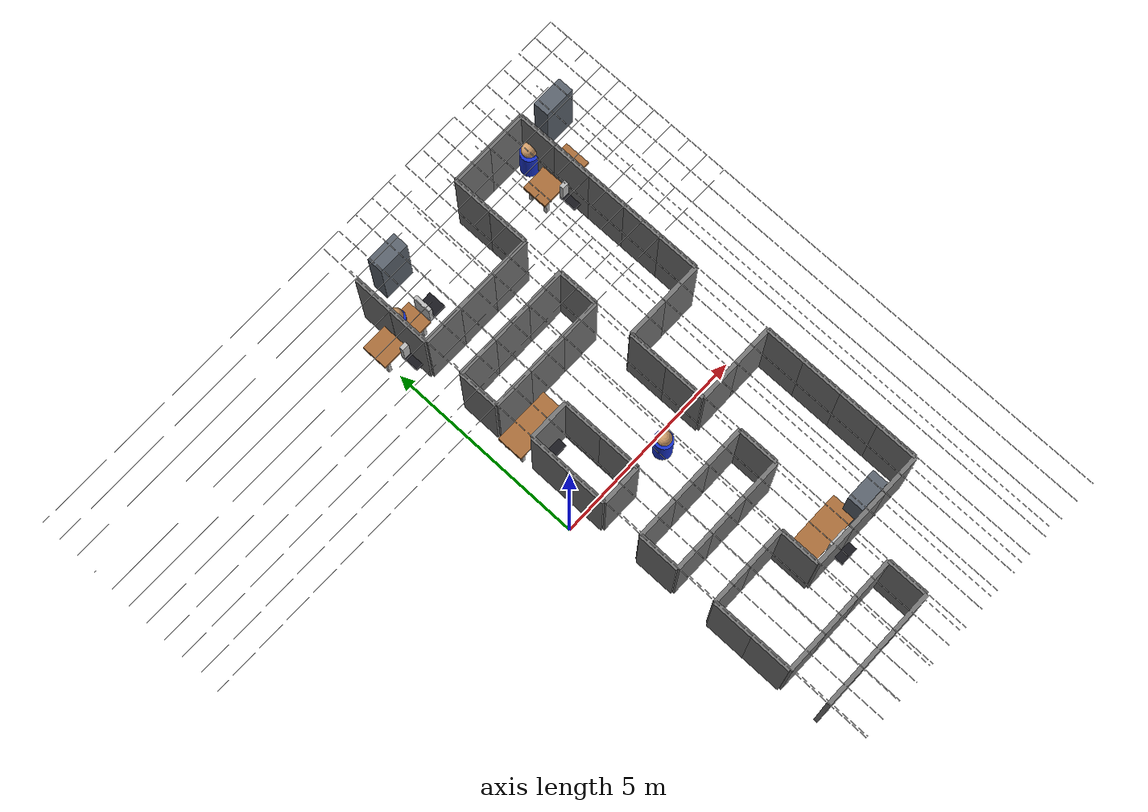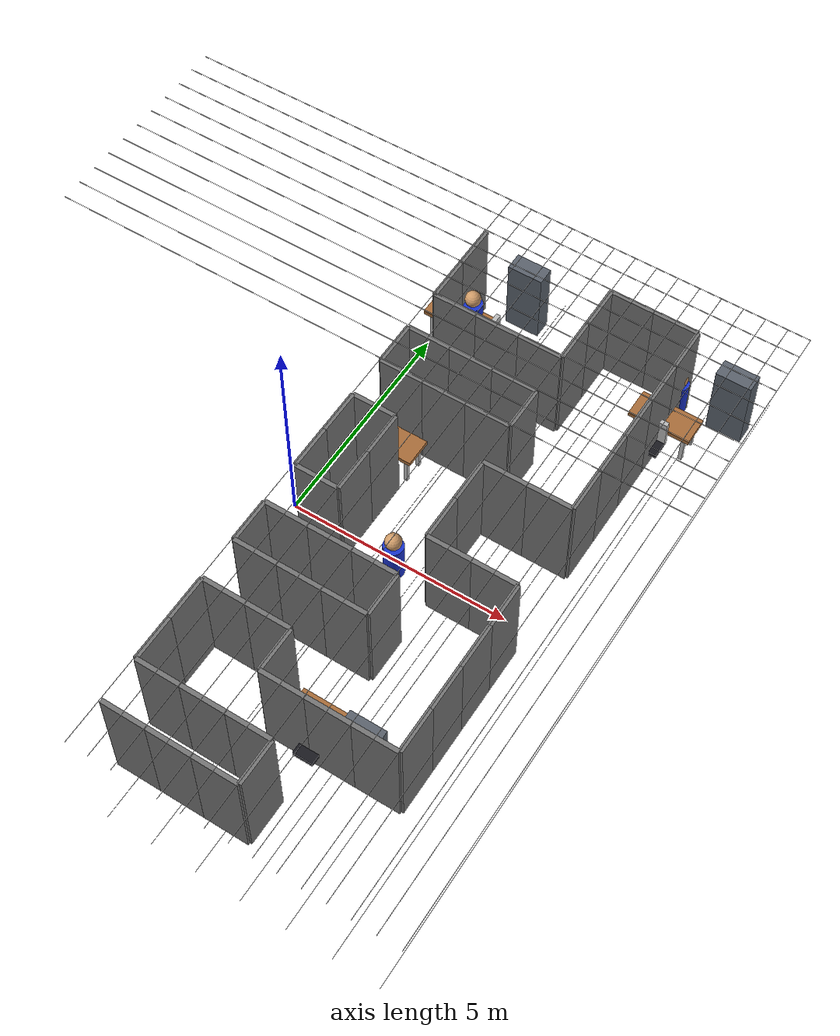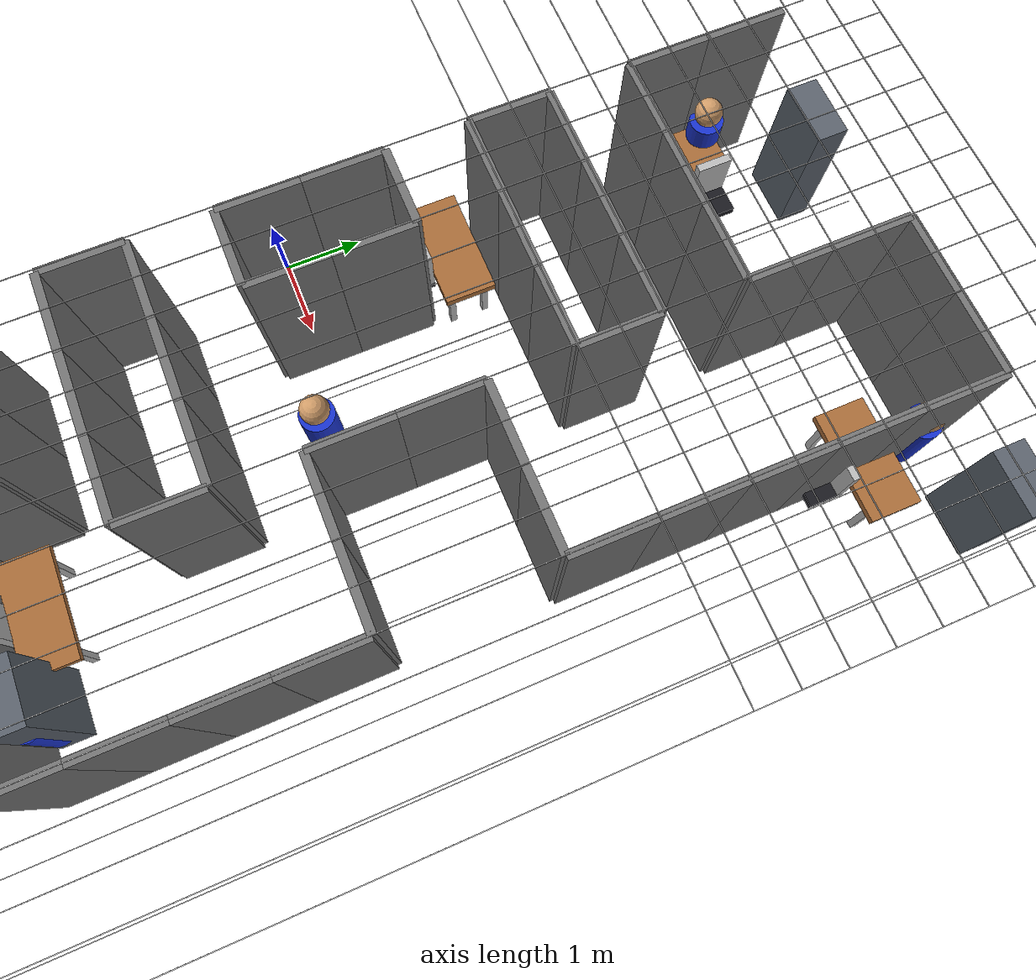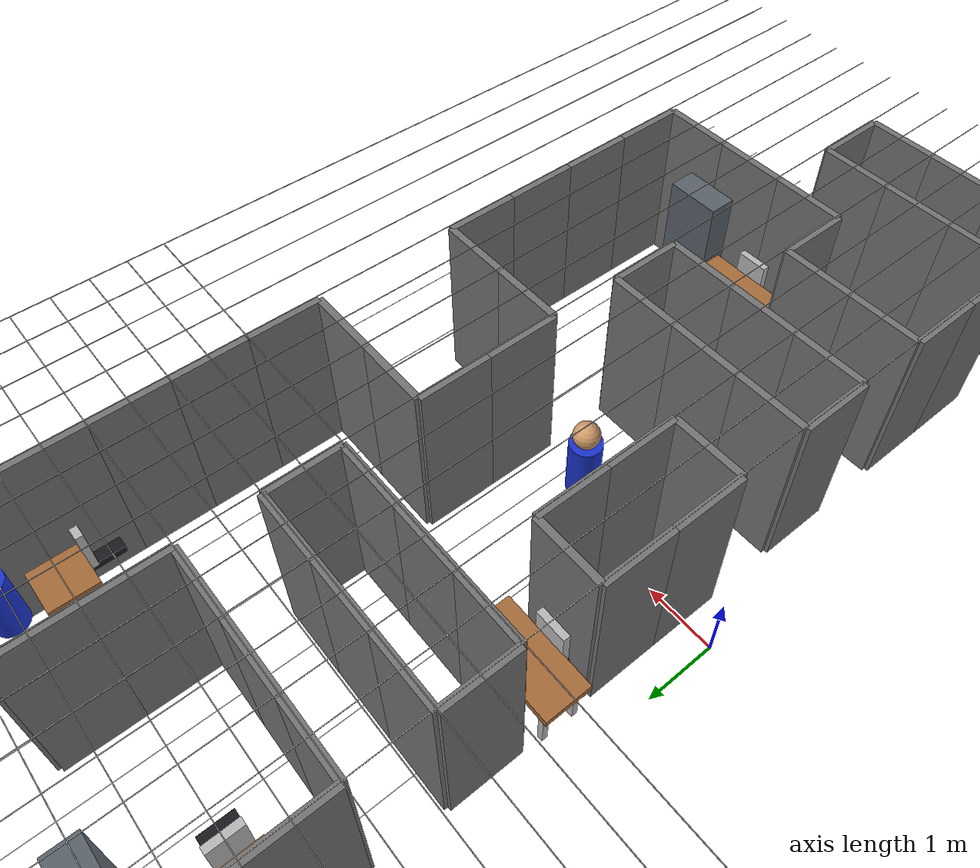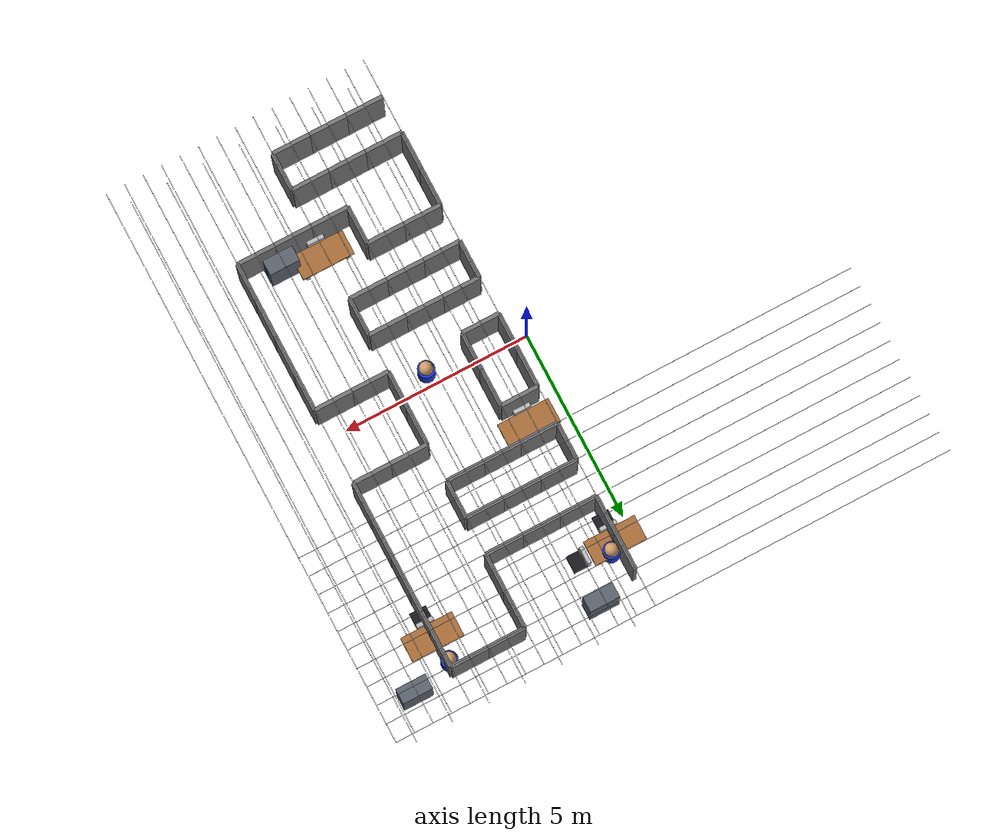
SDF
<sdf version="1.9">
 <world name="nidar_airmouse_building">
  <model name="grid_x_8">
   <static>true</static>
   <pose>1 0 0.006 0 0 0</pose>
   <link name="link">
    <visual name="visual">
     <geometry><box><size>0.008 15 0.002</size></box></geometry>
     <material><ambient>0.25 0.25 0.25 0.35</ambient></material>
    </visual>
   </link>
  </model>
  <model name="grid_x_9">
   <static>true</static>
   <pose>2 0 0.006 0 0 0</pose>
   <link name="link">
    <visual name="visual">
     <geometry><box><size>0.008 15 0.002</size></box></geometry>
     <material><ambient>0.25 0.25 0.25 0.35</ambient></material>
    </visual>
   </link>
  </model>
  <model name="grid_x_10">
   <static>true</static>
   <pose>3 0 0.006 0 0 0</pose>
   <link name="link">
    <visual name="visual">
     <geometry><box><size>0.008 15 0.002</size></box></geometry>
     <material><ambient>0.25 0.25 0.25 0.35</ambient></material>
    </visual>
   </link>
  </model>
  <model name="grid_x_11">
   <static>true</static>
   <pose>4 0 0.006 0 0 0</pose>
   <link name="link">
    <visual name="visual">
     <geometry><box><size>0.008 15 0.002</size></box></geometry>
     <material><ambient>0.25 0.25 0.25 0.35</ambient></material>
    </visual>
   </link>
  </model>
  <model name="grid_x_12">
   <static>true</static>
   <pose>5 0 0.006 0 0 0</pose>
   <link name="link">
    <visual name="visual">
     <geometry><box><size>0.008 15 0.002</size></box></geometry>
     <material><ambient>0.25 0.25 0.25 0.35</ambient></material>
    </visual>
   </link>
  </model>
  <model name="grid_x_13">
   <static>true</static>
   <pose>6 0 0.006 0 0 0</pose>
   <link name="link">
    <visual name="visual">
     <geometry><box><size>0.008 15 0.002</size></box></geometry>
     <material><ambient>0.25 0.25 0.25 0.35</ambient></material>
    </visual>
   </link>
  </model>
  <model name="grid_x_14">
   <static>true</static>
   <pose>7 0 0.006 0 0 0</pose>
   <link name="link">
    <visual name="visual">
     <geometry><box><size>0.008 15 0.002</size></box></geometry>
     <material><ambient>0.25 0.25 0.25 0.35</ambient></material>
    </visual>
   </link>
  </model>
  <model name="wall_7">
   <static>true</static>
   <pose>0.5 6.0 1.25
            0 0 0</pose>
   <link name="link">
    <collision name="collision"><geometry><box><size>0.1 1.0 2.5</size></box></geometry></collision>
    <visual name="visual">
     <geometry><box><size>0.1 1.0 2.5</size></box></geometry>
     <material><ambient>0.35 0.35 0.35 1</ambient><diffuse>0.45 0.45 0.45 1</diffuse></material>
    </visual>
   </link>
  </model>
  <model name="wall_8">
   <static>true</static>
   <pose>4.0 6.5 1.25
            0 0 0</pose>
   <link name="link">
    <collision name="collision"><geometry><box><size>1.0 0.1 2.5</size></box></geometry></collision>
    <visual name="visual">
     <geometry><box><size>1.0 0.1 2.5</size></box></geometry>
     <material><ambient>0.35 0.35 0.35 1</ambient><diffuse>0.45 0.45 0.45 1</diffuse></material>
    </visual>
   </link>
  </model>
  <model name="wall_9">
   <static>true</static>
   <pose>3.5 6.0 1.25
            0 0 0</pose>
   <link name="link">
    <collision name="collision"><geometry><box><size>0.1 1.0 2.5</size></box></geometry></collision>
    <visual name="visual">
     <geometry><box><size>0.1 1.0 2.5</size></box></geometry>
     <material><ambient>0.35 0.35 0.35 1</ambient><diffuse>0.45 0.45 0.45 1</diffuse></material>
    </visual>
   </link>
  </model>
  <model name="wall_10">
   <static>true</static>
   <pose>5.0 6.5 1.25
            0 0 0</pose>
   <link name="link">
    <collision name="collision"><geometry><box><size>1.0 0.1 2.5</size></box></geometry></collision>
    <visual name="visual">
     <geometry><box><size>1.0 0.1 2.5</size></box></geometry>
     <material><ambient>0.35 0.35 0.35 1</ambient><diffuse>0.45 0.45 0.45 1</diffuse></material>
    </visual>
   </link>
  </model>
  <model name="wall_11">
   <static>true</static>
   <pose>5.5 6.0 1.25
            0 0 0</pose>
   <link name="link">
    <collision name="collision"><geometry><box><size>0.1 1.0 2.5</size></box></geometry></collision>
    <visual name="visual">
     <geometry><box><size>0.1 1.0 2.5</size></box></geometry>
     <material><ambient>0.35 0.35 0.35 1</ambient><diffuse>0.45 0.45 0.45 1</diffuse></material>
    </visual>
   </link>
  </model>
  <model name="wall_16">
   <static>true</static>
   <pose>0.5 5.0 1.25
            0 0 0</pose>
   <link name="link">
    <collision name="collision"><geometry><box><size>0.1 1.0 2.5</size></box></geometry></collision>
    <visual name="visual">
     <geometry><box><size>0.1 1.0 2.5</size></box></geometry>
     <material><ambient>0.35 0.35 0.35 1</ambient><diffuse>0.45 0.45 0.45 1</diffuse></material>
    </visual>
   </link>
  </model>
  <model name="wall_17">
   <static>true</static>
   <pose>3.5 5.0 1.25
            0 0 0</pose>
   <link name="link">
    <collision name="collision"><geometry><box><size>0.1 1.0 2.5</size></box></geometry></collision>
    <visual name="visual">
     <geometry><box><size>0.1 1.0 2.5</size></box></geometry>
     <material><ambient>0.35 0.35 0.35 1</ambient><diffuse>0.45 0.45 0.45 1</diffuse></material>
    </visual>
   </link>
  </model>
  <model name="wall_18">
   <static>true</static>
   <pose>5.5 5.0 1.25
            0 0 0</pose>
   <link name="link">
    <collision name="collision"><geometry><box><size>0.1 1.0 2.5</size></box></geometry></collision>
    <visual name="visual">
     <geometry><box><size>0.1 1.0 2.5</size></box></geometry>
     <material><ambient>0.35 0.35 0.35 1</ambient><diffuse>0.45 0.45 0.45 1</diffuse></material>
    </visual>
   </link>
  </model>
  <model name="wall_26">
   <static>true</static>
   <pose>1.0 4.5 1.25
            0 0 0</pose>
   <link name="link">
    <collision name="collision"><geometry><box><size>1.0 0.1 2.5</size></box></geometry></collision>
    <visual name="visual">
     <geometry><box><size>1.0 0.1 2.5</size></box></geometry>
     <material><ambient>0.35 0.35 0.35 1</ambient><diffuse>0.45 0.45 0.45 1</diffuse></material>
    </visual>
   </link>
  </model>
  <model name="wall_27">
   <static>true</static>
   <pose>1.0 3.5 1.25
            0 0 0</pose>
   <link name="link">
    <collision name="collision"><geometry><box><size>1.0 0.1 2.5</size></box></geometry></collision>
    <visual name="visual">
     <geometry><box><size>1.0 0.1 2.5</size></box></geometry>
     <material><ambient>0.35 0.35 0.35 1</ambient><diffuse>0.45 0.45 0.45 1</diffuse></material>
    </visual>
   </link>
  </model>
  <model name="wall_28">
   <static>true</static>
   <pose>2.0 4.5 1.25
            0 0 0</pose>
   <link name="link">
    <collision name="collision"><geometry><box><size>1.0 0.1 2.5</size></box></geometry></collision>
    <visual name="visual">
     <geometry><box><size>1.0 0.1 2.5</size></box></geometry>
     <material><ambient>0.35 0.35 0.35 1</ambient><diffuse>0.45 0.45 0.45 1</diffuse></material>
    </visual>
   </link>
  </model>
  <model name="wall_29">
   <static>true</static>
   <pose>2.0 3.5 1.25
            0 0 0</pose>
   <link name="link">
    <collision name="collision"><geometry><box><size>1.0 0.1 2.5</size></box></geometry></collision>
    <visual name="visual">
     <geometry><box><size>1.0 0.1 2.5</size></box></geometry>
     <material><ambient>0.35 0.35 0.35 1</ambient><diffuse>0.45 0.45 0.45 1</diffuse></material>
    </visual>
   </link>
  </model>
  <model name="wall_30">
   <static>true</static>
   <pose>3.0 4.5 1.25
            0 0 0</pose>
   <link name="link">
    <collision name="collision"><geometry><box><size>1.0 0.1 2.5</size></box></geometry></collision>
    <visual name="visual">
     <geometry><box><size>1.0 0.1 2.5</size></box></geometry>
     <material><ambient>0.35 0.35 0.35 1</ambient><diffuse>0.45 0.45 0.45 1</diffuse></material>
    </visual>
   </link>
  </model>
  <model name="wall_31">
   <static>true</static>
   <pose>3.0 3.5 1.25
            0 0 0</pose>
   <link name="link">
    <collision name="collision"><geometry><box><size>1.0 0.1 2.5</size></box></geometry></collision>
    <visual name="visual">
     <geometry><box><size>1.0 0.1 2.5</size></box></geometry>
     <material><ambient>0.35 0.35 0.35 1</ambient><diffuse>0.45 0.45 0.45 1</diffuse></material>
    </visual>
   </link>
  </model>
  <model name="wall_32">
   <static>true</static>
   <pose>5.5 4.0 1.25
            0 0 0</pose>
   <link name="link">
    <collision name="collision"><geometry><box><size>0.1 1.0 2.5</size></box></geometry></collision>
    <visual name="visual">
     <geometry><box><size>0.1 1.0 2.5</size></box></geometry>
     <material><ambient>0.35 0.35 0.35 1</ambient><diffuse>0.45 0.45 0.45 1</diffuse></material>
    </visual>
   </link>
  </model>
  <model name="wall_36">
   <static>true</static>
   <pose>0.5 3.0 1.25
            0 0 0</pose>
   <link name="link">
    <collision name="collision"><geometry><box><size>0.1 1.0 2.5</size></box></geometry></collision>
    <visual name="visual">
     <geometry><box><size>0.1 1.0 2.5</size></box></geometry>
     <material><ambient>0.35 0.35 0.35 1</ambient><diffuse>0.45 0.45 0.45 1</diffuse></material>
    </visual>
   </link>
  </model>
  <model name="wall_37">
   <static>true</static>
   <pose>3.5 3.0 1.25
            0 0 0</pose>
   <link name="link">
    <collision name="collision"><geometry><box><size>0.1 1.0 2.5</size></box></geometry></collision>
    <visual name="visual">
     <geometry><box><size>0.1 1.0 2.5</size></box></geometry>
     <material><ambient>0.35 0.35 0.35 1</ambient><diffuse>0.45 0.45 0.45 1</diffuse></material>
    </visual>
   </link>
  </model>
  <model name="wall_38">
   <static>true</static>
   <pose>5.5 3.0 1.25
            0 0 0</pose>
   <link name="link">
    <collision name="collision"><geometry><box><size>0.1 1.0 2.5</size></box></geometry></collision>
    <visual name="visual">
     <geometry><box><size>0.1 1.0 2.5</size></box></geometry>
     <material><ambient>0.35 0.35 0.35 1</ambient><diffuse>0.45 0.45 0.45 1</diffuse></material>
    </visual>
   </link>
  </model>
  <model name="wall_48">
   <static>true</static>
   <pose>1.0 2.5 1.25
            0 0 0</pose>
   <link name="link">
    <collision name="collision"><geometry><box><size>1.0 0.1 2.5</size></box></geometry></collision>
    <visual name="visual">
     <geometry><box><size>1.0 0.1 2.5</size></box></geometry>
     <material><ambient>0.35 0.35 0.35 1</ambient><diffuse>0.45 0.45 0.45 1</diffuse></material>
    </visual>
   </link>
  </model>
  <model name="wall_49">
   <static>true</static>
   <pose>1.0 1.5 1.25
            0 0 0</pose>
   <link name="link">
    <collision name="collision"><geometry><box><size>1.0 0.1 2.5</size></box></geometry></collision>
    <visual name="visual">
     <geometry><box><size>1.0 0.1 2.5</size></box></geometry>
     <material><ambient>0.35 0.35 0.35 1</ambient><diffuse>0.45 0.45 0.45 1</diffuse></material>
    </visual>
   </link>
  </model>
  <model name="wall_50">
   <static>true</static>
   <pose>2.0 2.5 1.25
            0 0 0</pose>
   <link name="link">
    <collision name="collision"><geometry><box><size>1.0 0.1 2.5</size></box></geometry></collision>
    <visual name="visual">
     <geometry><box><size>1.0 0.1 2.5</size></box></geometry>
     <material><ambient>0.35 0.35 0.35 1</ambient><diffuse>0.45 0.45 0.45 1</diffuse></material>
    </visual>
   </link>
  </model>
  <model name="wall_51">
   <static>true</static>
   <pose>3.0 2.5 1.25
            0 0 0</pose>
   <link name="link">
    <collision name="collision"><geometry><box><size>1.0 0.1 2.5</size></box></geometry></collision>
    <visual name="visual">
     <geometry><box><size>1.0 0.1 2.5</size></box></geometry>
     <material><ambient>0.35 0.35 0.35 1</ambient><diffuse>0.45 0.45 0.45 1</diffuse></material>
    </visual>
   </link>
  </model>
  <model name="wall_52">
   <static>true</static>
   <pose>4.0 1.5 1.25
            0 0 0</pose>
   <link name="link">
    <collision name="collision"><geometry><box><size>1.0 0.1 2.5</size></box></geometry></collision>
    <visual name="visual">
     <geometry><box><size>1.0 0.1 2.5</size></box></geometry>
     <material><ambient>0.35 0.35 0.35 1</ambient><diffuse>0.45 0.45 0.45 1</diffuse></material>
    </visual>
   </link>
  </model>
  <model name="wall_53">
   <static>true</static>
   <pose>5.0 1.5 1.25
            0 0 0</pose>
   <link name="link">
    <collision name="collision"><geometry><box><size>1.0 0.1 2.5</size></box></geometry></collision>
    <visual name="visual">
     <geometry><box><size>1.0 0.1 2.5</size></box></geometry>
     <material><ambient>0.35 0.35 0.35 1</ambient><diffuse>0.45 0.45 0.45 1</diffuse></material>
    </visual>
   </link>
  </model>
  <model name="wall_54">
   <static>true</static>
   <pose>5.5 2.0 1.25
            0 0 0</pose>
   <link name="link">
    <collision name="collision"><geometry><box><size>0.1 1.0 2.5</size></box></geometry></collision>
    <visual name="visual">
     <geometry><box><size>0.1 1.0 2.5</size></box></geometry>
     <material><ambient>0.35 0.35 0.35 1</ambient><diffuse>0.45 0.45 0.45 1</diffuse></material>
    </visual>
   </link>
  </model>
  <model name="wall_56">
   <static>true</static>
   <pose>0.5 1.0 1.25
            0 0 0</pose>
   <link name="link">
    <collision name="collision"><geometry><box><size>0.1 1.0 2.5</size></box></geometry></collision>
    <visual name="visual">
     <geometry><box><size>0.1 1.0 2.5</size></box></geometry>
     <material><ambient>0.35 0.35 0.35 1</ambient><diffuse>0.45 0.45 0.45 1</diffuse></material>
    </visual>
   </link>
  </model>
  <model name="wall_57">
   <static>true</static>
   <pose>1.5 1.0 1.25
            0 0 0</pose>
   <link name="link">
    <collision name="collision"><geometry><box><size>0.1 1.0 2.5</size></box></geometry></collision>
    <visual name="visual">
     <geometry><box><size>0.1 1.0 2.5</size></box></geometry>
     <material><ambient>0.35 0.35 0.35 1</ambient><diffuse>0.45 0.45 0.45 1</diffuse></material>
    </visual>
   </link>
  </model>
  <model name="wall_58">
   <static>true</static>
   <pose>3.5 1.0 1.25
            0 0 0</pose>
   <link name="link">
    <collision name="collision"><geometry><box><size>0.1 1.0 2.5</size></box></geometry></collision>
    <visual name="visual">
     <geometry><box><size>0.1 1.0 2.5</size></box></geometry>
     <material><ambient>0.35 0.35 0.35 1</ambient><diffuse>0.45 0.45 0.45 1</diffuse></material>
    </visual>
   </link>
  </model>
  <model name="wall_60">
   <static>true</static>
   <pose>0.5 0.0 1.25
            0 0 0</pose>
   <link name="link">
    <collision name="collision"><geometry><box><size>0.1 1.0 2.5</size></box></geometry></collision>
    <visual name="visual">
     <geometry><box><size>0.1 1.0 2.5</size></box></geometry>
     <material><ambient>0.35 0.35 0.35 1</ambient><diffuse>0.45 0.45 0.45 1</diffuse></material>
    </visual>
   </link>
  </model>
  <model name="wall_61">
   <static>true</static>
   <pose>1.5 0.0 1.25
            0 0 0</pose>
   <link name="link">
    <collision name="collision"><geometry><box><size>0.1 1.0 2.5</size></box></geometry></collision>
    <visual name="visual">
     <geometry><box><size>0.1 1.0 2.5</size></box></geometry>
     <material><ambient>0.35 0.35 0.35 1</ambient><diffuse>0.45 0.45 0.45 1</diffuse></material>
    </visual>
   </link>
  </model>
  <model name="wall_62">
   <static>true</static>
   <pose>3.5 0.0 1.25
            0 0 0</pose>
   <link name="link">
    <collision name="collision"><geometry><box><size>0.1 1.0 2.5</size></box></geometry></collision>
    <visual name="visual">
     <geometry><box><size>0.1 1.0 2.5</size></box></geometry>
     <material><ambient>0.35 0.35 0.35 1</ambient><diffuse>0.45 0.45 0.45 1</diffuse></material>
    </visual>
   </link>
  </model>
  <model name="wall_64">
   <static>true</static>
   <pose>1.0 -0.5 1.25
            0 0 0</pose>
   <link name="link">
    <collision name="collision"><geometry><box><size>1.0 0.1 2.5</size></box></geometry></collision>
    <visual name="visual">
     <geometry><box><size>1.0 0.1 2.5</size></box></geometry>
     <material><ambient>0.35 0.35 0.35 1</ambient><diffuse>0.45 0.45 0.45 1</diffuse></material>
    </visual>
   </link>
  </model>
  <model name="wall_65">
   <static>true</static>
   <pose>1.0 -1.5 1.25
            0 0 0</pose>
   <link name="link">
    <collision name="collision"><geometry><box><size>1.0 0.1 2.5</size></box></geometry></collision>
    <visual name="visual">
     <geometry><box><size>1.0 0.1 2.5</size></box></geometry>
     <material><ambient>0.35 0.35 0.35 1</ambient><diffuse>0.45 0.45 0.45 1</diffuse></material>
    </visual>
   </link>
  </model>
  <model name="wall_66">
   <static>true</static>
   <pose>2.0 -1.5 1.25
            0 0 0</pose>
   <link name="link">
    <collision name="collision"><geometry><box><size>1.0 0.1 2.5</size></box></geometry></collision>
    <visual name="visual">
     <geometry><box><size>1.0 0.1 2.5</size></box></geometry>
     <material><ambient>0.35 0.35 0.35 1</ambient><diffuse>0.45 0.45 0.45 1</diffuse></material>
    </visual>
   </link>
  </model>
  <model name="wall_67">
   <static>true</static>
   <pose>3.0 -1.5 1.25
            0 0 0</pose>
   <link name="link">
    <collision name="collision"><geometry><box><size>1.0 0.1 2.5</size></box></geometry></collision>
    <visual name="visual">
     <geometry><box><size>1.0 0.1 2.5</size></box></geometry>
     <material><ambient>0.35 0.35 0.35 1</ambient><diffuse>0.45 0.45 0.45 1</diffuse></material>
    </visual>
   </link>
  </model>
  <model name="wall_68">
   <static>true</static>
   <pose>4.0 -0.5 1.25
            0 0 0</pose>
   <link name="link">
    <collision name="collision"><geometry><box><size>1.0 0.1 2.5</size></box></geometry></collision>
    <visual name="visual">
     <geometry><box><size>1.0 0.1 2.5</size></box></geometry>
     <material><ambient>0.35 0.35 0.35 1</ambient><diffuse>0.45 0.45 0.45 1</diffuse></material>
    </visual>
   </link>
  </model>
  <model name="wall_69">
   <static>true</static>
   <pose>5.0 -0.5 1.25
            0 0 0</pose>
   <link name="link">
    <collision name="collision"><geometry><box><size>1.0 0.1 2.5</size></box></geometry></collision>
    <visual name="visual">
     <geometry><box><size>1.0 0.1 2.5</size></box></geometry>
     <material><ambient>0.35 0.35 0.35 1</ambient><diffuse>0.45 0.45 0.45 1</diffuse></material>
    </visual>
   </link>
  </model>
  <model name="wall_70">
   <static>true</static>
   <pose>5.5 -1.0 1.25
            0 0 0</pose>
   <link name="link">
    <collision name="collision"><geometry><box><size>0.1 1.0 2.5</size></box></geometry></collision>
    <visual name="visual">
     <geometry><box><size>0.1 1.0 2.5</size></box></geometry>
     <material><ambient>0.35 0.35 0.35 1</ambient><diffuse>0.45 0.45 0.45 1</diffuse></material>
    </visual>
   </link>
  </model>
  <model name="wall_77">
   <static>true</static>
   <pose>0.5 -2.0 1.25
            0 0 0</pose>
   <link name="link">
    <collision name="collision"><geometry><box><size>0.1 1.0 2.5</size></box></geometry></collision>
    <visual name="visual">
     <geometry><box><size>0.1 1.0 2.5</size></box></geometry>
     <material><ambient>0.35 0.35 0.35 1</ambient><diffuse>0.45 0.45 0.45 1</diffuse></material>
    </visual>
   </link>
  </model>
  <model name="wall_78">
   <static>true</static>
   <pose>3.5 -2.0 1.25
            0 0 0</pose>
   <link name="link">
    <collision name="collision"><geometry><box><size>0.1 1.0 2.5</size></box></geometry></collision>
    <visual name="visual">
     <geometry><box><size>0.1 1.0 2.5</size></box></geometry>
     <material><ambient>0.35 0.35 0.35 1</ambient><diffuse>0.45 0.45 0.45 1</diffuse></material>
    </visual>
   </link>
  </model>
  <model name="wall_79">
   <static>true</static>
   <pose>5.5 -2.0 1.25
            0 0 0</pose>
   <link name="link">
    <collision name="collision"><geometry><box><size>0.1 1.0 2.5</size></box></geometry></collision>
    <visual name="visual">
     <geometry><box><size>0.1 1.0 2.5</size></box></geometry>
     <material><ambient>0.35 0.35 0.35 1</ambient><diffuse>0.45 0.45 0.45 1</diffuse></material>
    </visual>
   </link>
  </model>
  <model name="wall_86">
   <static>true</static>
   <pose>1.0 -2.5 1.25
            0 0 0</pose>
   <link name="link">
    <collision name="collision"><geometry><box><size>1.0 0.1 2.5</size></box></geometry></collision>
    <visual name="visual">
     <geometry><box><size>1.0 0.1 2.5</size></box></geometry>
     <material><ambient>0.35 0.35 0.35 1</ambient><diffuse>0.45 0.45 0.45 1</diffuse></material>
    </visual>
   </link>
  </model>
  <model name="wall_87">
   <static>true</static>
   <pose>1.0 -3.5 1.25
            0 0 0</pose>
   <link name="link">
    <collision name="collision"><geometry><box><size>1.0 0.1 2.5</size></box></geometry></collision>
    <visual name="visual">
     <geometry><box><size>1.0 0.1 2.5</size></box></geometry>
     <material><ambient>0.35 0.35 0.35 1</ambient><diffuse>0.45 0.45 0.45 1</diffuse></material>
    </visual>
   </link>
  </model>
  <model name="wall_88">
   <static>true</static>
   <pose>2.0 -2.5 1.25
            0 0 0</pose>
   <link name="link">
    <collision name="collision"><geometry><box><size>1.0 0.1 2.5</size></box></geometry></collision>
    <visual name="visual">
     <geometry><box><size>1.0 0.1 2.5</size></box></geometry>
     <material><ambient>0.35 0.35 0.35 1</ambient><diffuse>0.45 0.45 0.45 1</diffuse></material>
    </visual>
   </link>
  </model>
  <model name="wall_89">
   <static>true</static>
   <pose>2.0 -3.5 1.25
            0 0 0</pose>
   <link name="link">
    <collision name="collision"><geometry><box><size>1.0 0.1 2.5</size></box></geometry></collision>
    <visual name="visual">
     <geometry><box><size>1.0 0.1 2.5</size></box></geometry>
     <material><ambient>0.35 0.35 0.35 1</ambient><diffuse>0.45 0.45 0.45 1</diffuse></material>
    </visual>
   </link>
  </model>
  <model name="wall_90">
   <static>true</static>
   <pose>3.0 -2.5 1.25
            0 0 0</pose>
   <link name="link">
    <collision name="collision"><geometry><box><size>1.0 0.1 2.5</size></box></geometry></collision>
    <visual name="visual">
     <geometry><box><size>1.0 0.1 2.5</size></box></geometry>
     <material><ambient>0.35 0.35 0.35 1</ambient><diffuse>0.45 0.45 0.45 1</diffuse></material>
    </visual>
   </link>
  </model>
  <model name="wall_91">
   <static>true</static>
   <pose>5.5 -3.0 1.25
            0 0 0</pose>
   <link name="link">
    <collision name="collision"><geometry><box><size>0.1 1.0 2.5</size></box></geometry></collision>
    <visual name="visual">
     <geometry><box><size>0.1 1.0 2.5</size></box></geometry>
     <material><ambient>0.35 0.35 0.35 1</ambient><diffuse>0.45 0.45 0.45 1</diffuse></material>
    </visual>
   </link>
  </model>
  <model name="wall_93">
   <static>true</static>
   <pose>0.5 -4.0 1.25
            0 0 0</pose>
   <link name="link">
    <collision name="collision"><geometry><box><size>0.1 1.0 2.5</size></box></geometry></collision>
    <visual name="visual">
     <geometry><box><size>0.1 1.0 2.5</size></box></geometry>
     <material><ambient>0.35 0.35 0.35 1</ambient><diffuse>0.45 0.45 0.45 1</diffuse></material>
    </visual>
   </link>
  </model>
  <model name="wall_94">
   <static>true</static>
   <pose>3.0 -4.5 1.25
            0 0 0</pose>
   <link name="link">
    <collision name="collision"><geometry><box><size>1.0 0.1 2.5</size></box></geometry></collision>
    <visual name="visual">
     <geometry><box><size>1.0 0.1 2.5</size></box></geometry>
     <material><ambient>0.35 0.35 0.35 1</ambient><diffuse>0.45 0.45 0.45 1</diffuse></material>
    </visual>
   </link>
  </model>
  <model name="wall_95">
   <static>true</static>
   <pose>2.5 -4.0 1.25
            0 0 0</pose>
   <link name="link">
    <collision name="collision"><geometry><box><size>0.1 1.0 2.5</size></box></geometry></collision>
    <visual name="visual">
     <geometry><box><size>0.1 1.0 2.5</size></box></geometry>
     <material><ambient>0.35 0.35 0.35 1</ambient><diffuse>0.45 0.45 0.45 1</diffuse></material>
    </visual>
   </link>
  </model>
  <model name="wall_96">
   <static>true</static>
   <pose>4.0 -4.5 1.25
            0 0 0</pose>
   <link name="link">
    <collision name="collision"><geometry><box><size>1.0 0.1 2.5</size></box></geometry></collision>
    <visual name="visual">
     <geometry><box><size>1.0 0.1 2.5</size></box></geometry>
     <material><ambient>0.35 0.35 0.35 1</ambient><diffuse>0.45 0.45 0.45 1</diffuse></material>
    </visual>
   </link>
  </model>
  <model name="wall_97">
   <static>true</static>
   <pose>5.0 -4.5 1.25
            0 0 0</pose>
   <link name="link">
    <collision name="collision"><geometry><box><size>1.0 0.1 2.5</size></box></geometry></collision>
    <visual name="visual">
     <geometry><box><size>1.0 0.1 2.5</size></box></geometry>
     <material><ambient>0.35 0.35 0.35 1</ambient><diffuse>0.45 0.45 0.45 1</diffuse></material>
    </visual>
   </link>
  </model>
  <model name="wall_98">
   <static>true</static>
   <pose>5.5 -4.0 1.25
            0 0 0</pose>
   <link name="link">
    <collision name="collision"><geometry><box><size>0.1 1.0 2.5</size></box></geometry></collision>
    <visual name="visual">
     <geometry><box><size>0.1 1.0 2.5</size></box></geometry>
     <material><ambient>0.35 0.35 0.35 1</ambient><diffuse>0.45 0.45 0.45 1</diffuse></material>
    </visual>
   </link>
  </model>
  <model name="wall_100">
   <static>true</static>
   <pose>0.5 -5.0 1.25
            0 0 0</pose>
   <link name="link">
    <collision name="collision"><geometry><box><size>0.1 1.0 2.5</size></box></geometry></collision>
    <visual name="visual">
     <geometry><box><size>0.1 1.0 2.5</size></box></geometry>
     <material><ambient>0.35 0.35 0.35 1</ambient><diffuse>0.45 0.45 0.45 1</diffuse></material>
    </visual>
   </link>
  </model>
  <model name="wall_106">
   <static>true</static>
   <pose>1.0 -5.5 1.25
            0 0 0</pose>
   <link name="link">
    <collision name="collision"><geometry><box><size>1.0 0.1 2.5</size></box></geometry></collision>
    <visual name="visual">
     <geometry><box><size>1.0 0.1 2.5</size></box></geometry>
     <material><ambient>0.35 0.35 0.35 1</ambient><diffuse>0.45 0.45 0.45 1</diffuse></material>
    </visual>
   </link>
  </model>
  <model name="wall_107">
   <static>true</static>
   <pose>1.0 -6.5 1.25
            0 0 0</pose>
   <link name="link">
    <collision name="collision"><geometry><box><size>1.0 0.1 2.5</size></box></geometry></collision>
    <visual name="visual">
     <geometry><box><size>1.0 0.1 2.5</size></box></geometry>
     <material><ambient>0.35 0.35 0.35 1</ambient><diffuse>0.45 0.45 0.45 1</diffuse></material>
    </visual>
   </link>
  </model>
  <model name="wall_108">
   <static>true</static>
   <pose>2.0 -5.5 1.25
            0 0 0</pose>
   <link name="link">
    <collision name="collision"><geometry><box><size>1.0 0.1 2.5</size></box></geometry></collision>
    <visual name="visual">
     <geometry><box><size>1.0 0.1 2.5</size></box></geometry>
     <material><ambient>0.35 0.35 0.35 1</ambient><diffuse>0.45 0.45 0.45 1</diffuse></material>
    </visual>
   </link>
  </model>
  <model name="wall_109">
   <static>true</static>
   <pose>2.0 -6.5 1.25
            0 0 0</pose>
   <link name="link">
    <collision name="collision"><geometry><box><size>1.0 0.1 2.5</size></box></geometry></collision>
    <visual name="visual">
     <geometry><box><size>1.0 0.1 2.5</size></box></geometry>
     <material><ambient>0.35 0.35 0.35 1</ambient><diffuse>0.45 0.45 0.45 1</diffuse></material>
    </visual>
   </link>
  </model>
  <model name="wall_110">
   <static>true</static>
   <pose>3.0 -5.5 1.25
            0 0 0</pose>
   <link name="link">
    <collision name="collision"><geometry><box><size>1.0 0.1 2.5</size></box></geometry></collision>
    <visual name="visual">
     <geometry><box><size>1.0 0.1 2.5</size></box></geometry>
     <material><ambient>0.35 0.35 0.35 1</ambient><diffuse>0.45 0.45 0.45 1</diffuse></material>
    </visual>
   </link>
  </model>
  <model name="wall_111">
   <static>true</static>
   <pose>3.0 -6.5 1.25
            0 0 0</pose>
   <link name="link">
    <collision name="collision"><geometry><box><size>1.0 0.1 2.5</size></box></geometry></collision>
    <visual name="visual">
     <geometry><box><size>1.0 0.1 2.5</size></box></geometry>
     <material><ambient>0.35 0.35 0.35 1</ambient><diffuse>0.45 0.45 0.45 1</diffuse></material>
    </visual>
   </link>
  </model>
  <model name="wall_112">
   <static>true</static>
   <pose>3.5 -6.0 1.25
            0 0 0</pose>
   <link name="link">
    <collision name="collision"><geometry><box><size>0.1 1.0 2.5</size></box></geometry></collision>
    <visual name="visual">
     <geometry><box><size>0.1 1.0 2.5</size></box></geometry>
     <material><ambient>0.35 0.35 0.35 1</ambient><diffuse>0.45 0.45 0.45 1</diffuse></material>
    </visual>
   </link>
  </model>
  <model name="desk_02">
   <static>true</static>
   <pose>0.5 5.5 0
            0 0 0.0</pose>
   <link name="link">
    <visual name="desktop">
     <pose>0 0 0.75
                    0 0 0</pose>
     <geometry><box><size>1.4 0.65 0.10</size></box></geometry>
     <material><ambient>0.55 0.35 0.18 1</ambient><diffuse>0.65 0.42 0.22 1</diffuse></material>
    </visual>
    <visual name="leg1">
     <pose>-0.55 -0.22 0.37 0 0 0</pose>
     <geometry><box><size>0.08 0.08 0.74</size></box></geometry>
    </visual>
    <visual name="leg2">
     <pose>0.55 -0.22 0.37 0 0 0</pose>
     <geometry><box><size>0.08 0.08 0.74</size></box></geometry>
    </visual>
    <visual name="leg3">
     <pose>-0.55 0.22 0.37 0 0 0</pose>
     <geometry><box><size>0.08 0.08 0.74</size></box></geometry>
    </visual>
    <visual name="leg4">
     <pose>0.55 0.22 0.37 0 0 0</pose>
     <geometry><box><size>0.08 0.08 0.74</size></box></geometry>
    </visual>
    <collision name="desktop_collision">
     <pose>0 0 0.75
                    0 0 0</pose>
     <geometry><box><size>1.4 0.65 0.10</size></box></geometry>
    </collision>
   </link>
  </model>
  <model name="chair_03">
   <static>true</static>
   <pose>0.5 4.95 0
            0 0 0.0</pose>
   <link name="link">
    <visual name="seat">
     <pose>0 0 0.45
                    0 0 0</pose>
     <geometry><box><size>0.45 0.45 0.10</size></box></geometry>
     <material><ambient>0.08 0.08 0.10 1</ambient><diffuse>0.10 0.10 0.12 1</diffuse></material>
    </visual>
    <visual name="back">
     <pose>0 0.18 0.78
                    0 0 0</pose>
     <geometry><box><size>0.45 0.10 0.65</size></box></geometry>
    </visual>
    <visual name="support">
     <pose>0 0 0.22
                    0 0 0</pose>
     <geometry><cylinder><radius>0.05</radius><length>0.45</length></cylinder></geometry>
    </visual>
    <collision name="collision">
     <pose>0 0 0.45
                    0 0 0</pose>
     <geometry><box><size>0.45 0.45 0.10</size></box></geometry>
    </collision>
   </link>
  </model>
  <model name="chair_04">
   <static>true</static>
   <pose>1.5 5.5 0
            0 0 1.57</pose>
   <link name="link">
    <visual name="seat">
     <pose>0 0 0.45
                    0 0 0</pose>
     <geometry><box><size>0.45 0.45 0.10</size></box></geometry>
     <material><ambient>0.08 0.08 0.10 1</ambient><diffuse>0.10 0.10 0.12 1</diffuse></material>
    </visual>
    <visual name="back">
     <pose>0 0.18 0.78
                    0 0 0</pose>
     <geometry><box><size>0.45 0.10 0.65</size></box></geometry>
    </visual>
    <visual name="support">
     <pose>0 0 0.22
                    0 0 0</pose>
     <geometry><cylinder><radius>0.05</radius><length>0.45</length></cylinder></geometry>
    </visual>
    <collision name="collision">
     <pose>0 0 0.45
                    0 0 0</pose>
     <geometry><box><size>0.45 0.45 0.10</size></box></geometry>
    </collision>
   </link>
  </model>
  <model name="cabinet_02">
   <static>true</static>
   <pose>1.5 6.65 0.9
            0 0 0</pose>
   <link name="link">
    <collision name="collision"><geometry><box><size>0.8 0.4 1.8</size></box></geometry></collision>
    <visual name="visual">
     <geometry><box><size>0.8 0.4 1.8</size></box></geometry>
     <material><ambient>0.35 0.38 0.42 1</ambient><diffuse>0.35 0.38 0.42 1</diffuse></material>
    </visual>
   </link>
  </model>
  <model name="desk_03">
   <static>true</static>
   <pose>5.5 5.5 0
            0 0 0.0</pose>
   <link name="link">
    <visual name="desktop">
     <pose>0 0 0.75
                    0 0 0</pose>
     <geometry><box><size>1.4 0.65 0.10</size></box></geometry>
     <material><ambient>0.55 0.35 0.18 1</ambient><diffuse>0.65 0.42 0.22 1</diffuse></material>
    </visual>
    <visual name="leg1">
     <pose>-0.55 -0.22 0.37 0 0 0</pose>
     <geometry><box><size>0.08 0.08 0.74</size></box></geometry>
    </visual>
    <visual name="leg2">
     <pose>0.55 -0.22 0.37 0 0 0</pose>
     <geometry><box><size>0.08 0.08 0.74</size></box></geometry>
    </visual>
    <visual name="leg3">
     <pose>-0.55 0.22 0.37 0 0 0</pose>
     <geometry><box><size>0.08 0.08 0.74</size></box></geometry>
    </visual>
    <visual name="leg4">
     <pose>0.55 0.22 0.37 0 0 0</pose>
     <geometry><box><size>0.08 0.08 0.74</size></box></geometry>
    </visual>
    <collision name="desktop_collision">
     <pose>0 0 0.75
                    0 0 0</pose>
     <geometry><box><size>1.4 0.65 0.10</size></box></geometry>
    </collision>
   </link>
  </model>
  <model name="chair_05">
   <static>true</static>
   <pose>5.5 4.95 0
            0 0 0.0</pose>
   <link name="link">
    <visual name="seat">
     <pose>0 0 0.45
                    0 0 0</pose>
     <geometry><box><size>0.45 0.45 0.10</size></box></geometry>
     <material><ambient>0.08 0.08 0.10 1</ambient><diffuse>0.10 0.10 0.12 1</diffuse></material>
    </visual>
    <visual name="back">
     <pose>0 0.18 0.78
                    0 0 0</pose>
     <geometry><box><size>0.45 0.10 0.65</size></box></geometry>
    </visual>
    <visual name="support">
     <pose>0 0 0.22
                    0 0 0</pose>
     <geometry><cylinder><radius>0.05</radius><length>0.45</length></cylinder></geometry>
    </visual>
    <collision name="collision">
     <pose>0 0 0.45
                    0 0 0</pose>
     <geometry><box><size>0.45 0.45 0.10</size></box></geometry>
    </collision>
   </link>
  </model>
  <model name="cabinet_03">
   <static>true</static>
   <pose>6.5 6.5 0.9
            0 0 0</pose>
   <link name="link">
    <collision name="collision"><geometry><box><size>0.8 0.4 1.8</size></box></geometry></collision>
    <visual name="visual">
     <geometry><box><size>0.8 0.4 1.8</size></box></geometry>
     <material><ambient>0.35 0.38 0.42 1</ambient><diffuse>0.35 0.38 0.42 1</diffuse></material>
    </visual>
   </link>
  </model>
  <model name="desk_05">
   <static>true</static>
   <pose>1.0 2.0 0
            0 0 0.0</pose>
   <link name="link">
    <visual name="desktop">
     <pose>0 0 0.75
                    0 0 0</pose>
     <geometry><box><size>1.4 0.65 0.10</size></box></geometry>
     <material><ambient>0.55 0.35 0.18 1</ambient><diffuse>0.65 0.42 0.22 1</diffuse></material>
    </visual>
    <visual name="leg1">
     <pose>-0.55 -0.22 0.37 0 0 0</pose>
     <geometry><box><size>0.08 0.08 0.74</size></box></geometry>
    </visual>
    <visual name="leg2">
     <pose>0.55 -0.22 0.37 0 0 0</pose>
     <geometry><box><size>0.08 0.08 0.74</size></box></geometry>
    </visual>
    <visual name="leg3">
     <pose>-0.55 0.22 0.37 0 0 0</pose>
     <geometry><box><size>0.08 0.08 0.74</size></box></geometry>
    </visual>
    <visual name="leg4">
     <pose>0.55 0.22 0.37 0 0 0</pose>
     <geometry><box><size>0.08 0.08 0.74</size></box></geometry>
    </visual>
    <collision name="desktop_collision">
     <pose>0 0 0.75
                    0 0 0</pose>
     <geometry><box><size>1.4 0.65 0.10</size></box></geometry>
    </collision>
   </link>
  </model>
  <model name="chair_07">
   <static>true</static>
   <pose>1.0 1.45 0
            0 0 0.0</pose>
   <link name="link">
    <visual name="seat">
     <pose>0 0 0.45
                    0 0 0</pose>
     <geometry><box><size>0.45 0.45 0.10</size></box></geometry>
     <material><ambient>0.08 0.08 0.10 1</ambient><diffuse>0.10 0.10 0.12 1</diffuse></material>
    </visual>
    <visual name="back">
     <pose>0 0.18 0.78
                    0 0 0</pose>
     <geometry><box><size>0.45 0.10 0.65</size></box></geometry>
    </visual>
    <visual name="support">
     <pose>0 0 0.22
                    0 0 0</pose>
     <geometry><cylinder><radius>0.05</radius><length>0.45</length></cylinder></geometry>
    </visual>
    <collision name="collision">
     <pose>0 0 0.45
                    0 0 0</pose>
     <geometry><box><size>0.45 0.45 0.10</size></box></geometry>
    </collision>
   </link>
  </model>
  <model name="desk_06">
   <static>true</static>
   <pose>3.5 -4.0 0
            0 0 0.0</pose>
   <link name="link">
    <visual name="desktop">
     <pose>0 0 0.75
                    0 0 0</pose>
     <geometry><box><size>1.4 0.65 0.10</size></box></geometry>
     <material><ambient>0.55 0.35 0.18 1</ambient><diffuse>0.65 0.42 0.22 1</diffuse></material>
    </visual>
    <visual name="leg1">
     <pose>-0.55 -0.22 0.37 0 0 0</pose>
     <geometry><box><size>0.08 0.08 0.74</size></box></geometry>
    </visual>
    <visual name="leg2">
     <pose>0.55 -0.22 0.37 0 0 0</pose>
     <geometry><box><size>0.08 0.08 0.74</size></box></geometry>
    </visual>
    <visual name="leg3">
     <pose>-0.55 0.22 0.37 0 0 0</pose>
     <geometry><box><size>0.08 0.08 0.74</size></box></geometry>
    </visual>
    <visual name="leg4">
     <pose>0.55 0.22 0.37 0 0 0</pose>
     <geometry><box><size>0.08 0.08 0.74</size></box></geometry>
    </visual>
    <collision name="desktop_collision">
     <pose>0 0 0.75
                    0 0 0</pose>
     <geometry><box><size>1.4 0.65 0.10</size></box></geometry>
    </collision>
   </link>
  </model>
  <model name="chair_08">
   <static>true</static>
   <pose>3.5 -4.55 0
            0 0 0.0</pose>
   <link name="link">
    <visual name="seat">
     <pose>0 0 0.45
                    0 0 0</pose>
     <geometry><box><size>0.45 0.45 0.10</size></box></geometry>
     <material><ambient>0.08 0.08 0.10 1</ambient><diffuse>0.10 0.10 0.12 1</diffuse></material>
    </visual>
    <visual name="back">
     <pose>0 0.18 0.78
                    0 0 0</pose>
     <geometry><box><size>0.45 0.10 0.65</size></box></geometry>
    </visual>
    <visual name="support">
     <pose>0 0 0.22
                    0 0 0</pose>
     <geometry><cylinder><radius>0.05</radius><length>0.45</length></cylinder></geometry>
    </visual>
    <collision name="collision">
     <pose>0 0 0.45
                    0 0 0</pose>
     <geometry><box><size>0.45 0.45 0.10</size></box></geometry>
    </collision>
   </link>
  </model>
  <model name="cabinet_04">
   <static>true</static>
   <pose>4.5 -4.2 0.9
            0 0 0</pose>
   <link name="link">
    <collision name="collision"><geometry><box><size>0.8 0.4 1.8</size></box></geometry></collision>
    <visual name="visual">
     <geometry><box><size>0.8 0.4 1.8</size></box></geometry>
     <material><ambient>0.35 0.38 0.42 1</ambient><diffuse>0.35 0.38 0.42 1</diffuse></material>
    </visual>
   </link>
  </model>
  <model name="survivor_02">
   <static>true</static>
   <pose>0.7 5.7 0.0
                0 0 0</pose>
   <link name="body">
    <visual name="torso">
     <pose>0 0 0.65
                        0 0 0</pose>
     <geometry><cylinder><radius>0.22</radius><length>0.9</length></cylinder></geometry>
     <material><ambient>0.1 0.2 0.8 1</ambient><diffuse>0.1 0.2 0.8 1</diffuse></material>
    </visual>
    <visual name="head">
     <pose>0 0 1.25
                        0 0 0</pose>
     <geometry><sphere><radius>0.18</radius></sphere></geometry>
     <material><ambient>0.8 0.6 0.4 1</ambient><diffuse>0.8 0.6 0.4 1</diffuse></material>
    </visual>
   </link>
  </model>
  <model name="survivor_03">
   <static>true</static>
   <pose>5.4 6.2 0.0
                0 0 0</pose>
   <link name="body">
    <visual name="torso">
     <pose>0 0 0.65
                        0 0 0</pose>
     <geometry><cylinder><radius>0.22</radius><length>0.9</length></cylinder></geometry>
     <material><ambient>0.1 0.2 0.8 1</ambient><diffuse>0.1 0.2 0.8 1</diffuse></material>
    </visual>
    <visual name="head">
     <pose>0 0 1.25
                        0 0 0</pose>
     <geometry><sphere><radius>0.18</radius></sphere></geometry>
     <material><ambient>0.8 0.6 0.4 1</ambient><diffuse>0.8 0.6 0.4 1</diffuse></material>
    </visual>
   </link>
  </model>
  <model name="survivor_05">
   <static>true</static>
   <pose>2.6 -0.3 0.0
                0 0 0</pose>
   <link name="body">
    <visual name="torso">
     <pose>0 0 0.65
                        0 0 0</pose>
     <geometry><cylinder><radius>0.22</radius><length>0.9</length></cylinder></geometry>
     <material><ambient>0.1 0.2 0.8 1</ambient><diffuse>0.1 0.2 0.8 1</diffuse></material>
    </visual>
    <visual name="head">
     <pose>0 0 1.25
                        0 0 0</pose>
     <geometry><sphere><radius>0.18</radius></sphere></geometry>
     <material><ambient>0.8 0.6 0.4 1</ambient><diffuse>0.8 0.6 0.4 1</diffuse></material>
    </visual>
   </link>
  </model>
  <model name="survivor_06">
   <static>true</static>
   <pose>4.7 -4.3 0.0
                0 0 0</pose>
   <link name="body">
    <visual name="torso">
     <pose>0 0 0.65
                        0 0 0</pose>
     <geometry><cylinder><radius>0.22</radius><length>0.9</length></cylinder></geometry>
     <material><ambient>0.1 0.2 0.8 1</ambient><diffuse>0.1 0.2 0.8 1</diffuse></material>
    </visual>
    <visual name="head">
     <pose>0 0 1.25
                        0 0 0</pose>
     <geometry><sphere><radius>0.18</radius></sphere></geometry>
     <material><ambient>0.8 0.6 0.4 1</ambient><diffuse>0.8 0.6 0.4 1</diffuse></material>
    </visual>
   </link>
  </model>
  <model name="net_x_16">
   <static>true</static>
   <pose>0.5 0 2.55
                0 0 0</pose>
   <link name="link">
    <visual name="visual"><geometry><box><size>0.008 15 0.008</size></box></geometry></visual>
   </link>
  </model>
  <model name="net_x_17">
   <static>true</static>
   <pose>1.0 0 2.55
                0 0 0</pose>
   <link name="link">
    <visual name="visual"><geometry><box><size>0.008 15 0.008</size></box></geometry></visual>
   </link>
  </model>
  <model name="net_x_18">
   <static>true</static>
   <pose>1.5 0 2.55
                0 0 0</pose>
   <link name="link">
    <visual name="visual"><geometry><box><size>0.008 15 0.008</size></box></geometry></visual>
   </link>
  </model>
  <model name="net_x_19">
   <static>true</static>
   <pose>2.0 0 2.55
                0 0 0</pose>
   <link name="link">
    <visual name="visual"><geometry><box><size>0.008 15 0.008</size></box></geometry></visual>
   </link>
  </model>
  <model name="net_x_20">
   <static>true</static>
   <pose>2.5 0 2.55
                0 0 0</pose>
   <link name="link">
    <visual name="visual"><geometry><box><size>0.008 15 0.008</size></box></geometry></visual>
   </link>
  </model>
  <model name="net_x_21">
   <static>true</static>
   <pose>3.0 0 2.55
                0 0 0</pose>
   <link name="link">
    <visual name="visual"><geometry><box><size>0.008 15 0.008</size></box></geometry></visual>
   </link>
  </model>
  <model name="net_x_22">
   <static>true</static>
   <pose>3.5 0 2.55
                0 0 0</pose>
   <link name="link">
    <visual name="visual"><geometry><box><size>0.008 15 0.008</size></box></geometry></visual>
   </link>
  </model>
  <model name="net_x_23">
   <static>true</static>
   <pose>4.0 0 2.55
                0 0 0</pose>
   <link name="link">
    <visual name="visual"><geometry><box><size>0.008 15 0.008</size></box></geometry></visual>
   </link>
  </model>
  <model name="net_x_24">
   <static>true</static>
   <pose>4.5 0 2.55
                0 0 0</pose>
   <link name="link">
    <visual name="visual"><geometry><box><size>0.008 15 0.008</size></box></geometry></visual>
   </link>
  </model>
  <model name="net_x_25">
   <static>true</static>
   <pose>5.0 0 2.55
                0 0 0</pose>
   <link name="link">
    <visual name="visual"><geometry><box><size>0.008 15 0.008</size></box></geometry></visual>
   </link>
  </model>
  <model name="net_x_26">
   <static>true</static>
   <pose>5.5 0 2.55
                0 0 0</pose>
   <link name="link">
    <visual name="visual"><geometry><box><size>0.008 15 0.008</size></box></geometry></visual>
   </link>
  </model>
  <model name="net_x_27">
   <static>true</static>
   <pose>6.0 0 2.55
                0 0 0</pose>
   <link name="link">
    <visual name="visual"><geometry><box><size>0.008 15 0.008</size></box></geometry></visual>
   </link>
  </model>
  <model name="net_x_28">
   <static>true</static>
   <pose>6.5 0 2.55
                0 0 0</pose>
   <link name="link">
    <visual name="visual"><geometry><box><size>0.008 15 0.008</size></box></geometry></visual>
   </link>
  </model>
  <model name="net_x_29">
   <static>true</static>
   <pose>7.0 0 2.55
                0 0 0</pose>
   <link name="link">
    <visual name="visual"><geometry><box><size>0.008 15 0.008</size></box></geometry></visual>
   </link>
  </model>
  <model name="net_x_30">
   <static>true</static>
   <pose>7.5 0 2.55
                0 0 0</pose>
   <link name="link">
    <visual name="visual"><geometry><box><size>0.008 15 0.008</size></box></geometry></visual>
   </link>
  </model>
  <model name="net_y_51">
   <static>true</static>
   <pose>0 2.5 2.55
                0 0 0</pose>
   <link name="link">
    <visual name="visual"><geometry><box><size>15 0.008 0.008</size></box></geometry></visual>
   </link>
  </model>
  <model name="net_y_52">
   <static>true</static>
   <pose>0 3.0 2.55
                0 0 0</pose>
   <link name="link">
    <visual name="visual"><geometry><box><size>15 0.008 0.008</size></box></geometry></visual>
   </link>
  </model>
  <model name="net_y_53">
   <static>true</static>
   <pose>0 3.5 2.55
                0 0 0</pose>
   <link name="link">
    <visual name="visual"><geometry><box><size>15 0.008 0.008</size></box></geometry></visual>
   </link>
  </model>
  <model name="net_y_54">
   <static>true</static>
   <pose>0 4.0 2.55
                0 0 0</pose>
   <link name="link">
    <visual name="visual"><geometry><box><size>15 0.008 0.008</size></box></geometry></visual>
   </link>
  </model>
  <model name="net_y_55">
   <static>true</static>
   <pose>0 4.5 2.55
                0 0 0</pose>
   <link name="link">
    <visual name="visual"><geometry><box><size>15 0.008 0.008</size></box></geometry></visual>
   </link>
  </model>
  <model name="net_y_56">
   <static>true</static>
   <pose>0 5.0 2.55
                0 0 0</pose>
   <link name="link">
    <visual name="visual"><geometry><box><size>15 0.008 0.008</size></box></geometry></visual>
   </link>
  </model>
  <model name="net_y_57">
   <static>true</static>
   <pose>0 5.5 2.55
                0 0 0</pose>
   <link name="link">
    <visual name="visual"><geometry><box><size>15 0.008 0.008</size></box></geometry></visual>
   </link>
  </model>
  <model name="net_y_58">
   <static>true</static>
   <pose>0 6.0 2.55
                0 0 0</pose>
   <link name="link">
    <visual name="visual"><geometry><box><size>15 0.008 0.008</size></box></geometry></visual>
   </link>
  </model>
  <model name="net_y_59">
   <static>true</static>
   <pose>0 6.5 2.55
                0 0 0</pose>
   <link name="link">
    <visual name="visual"><geometry><box><size>15 0.008 0.008</size></box></geometry></visual>
   </link>
  </model>
  <model name="net_y_60">
   <static>true</static>
   <pose>0 7.0 2.55
                0 0 0</pose>
   <link name="link">
    <visual name="visual"><geometry><box><size>15 0.008 0.008</size></box></geometry></visual>
   </link>
  </model>
  <model name="net_y_61">
   <static>true</static>
   <pose>0 7.5 2.55
                0 0 0</pose>
   <link name="link">
    <visual name="visual"><geometry><box><size>15 0.008 0.008</size></box></geometry></visual>
   </link>
  </model>
 </world>
</sdf>
